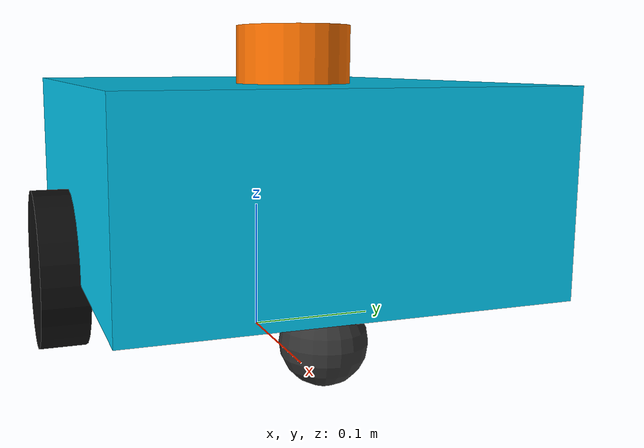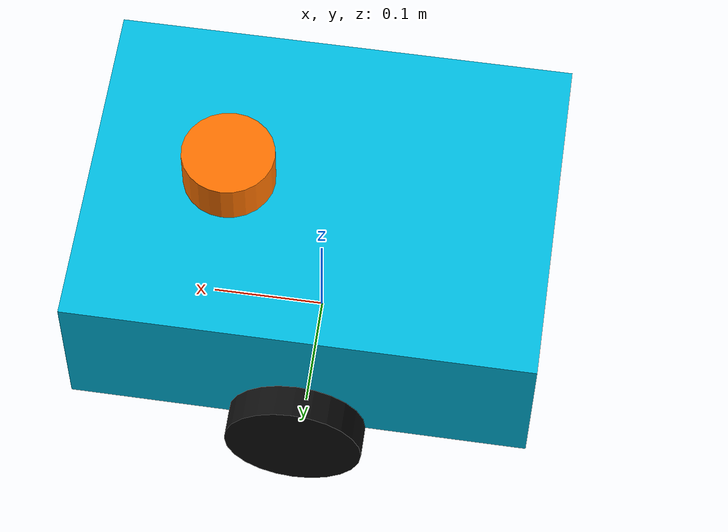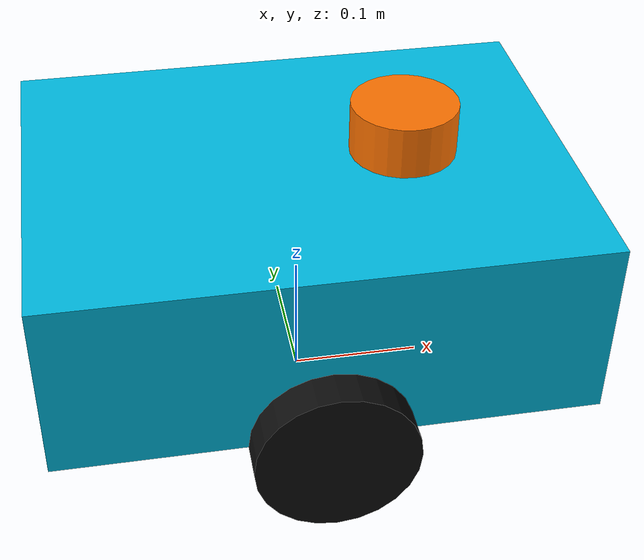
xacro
<?xml version="1.0"?>
<robot xmlns:xacro="http://www.ros.org/wiki/xacro" name="navpro_mini">

  <!-- INCLUDES -->
  <xacro:include filename="$(find navpro_description)/urdf/lidar.xacro" />
  <xacro:include filename="$(find navpro_description)/urdf/imu.xacro" />
  <xacro:include filename="$(find navpro_description)/urdf/gazebo_plugins.xacro" />

  <!-- CONSTANTS & PROPERTIES -->
  <xacro:property name="chassis_length" value="0.40" />
  <xacro:property name="chassis_width" value="0.30" />
  <xacro:property name="chassis_height" value="0.14" />
  <xacro:property name="chassis_mass" value="8.0" />

  <xacro:property name="wheel_radius" value="0.06" />
  <xacro:property name="wheel_width" value="0.035" />
  <xacro:property name="wheel_separation" value="0.32" />
  <xacro:property name="wheel_mass" value="0.8" />

  <xacro:property name="caster_radius" value="0.03" />
  <xacro:property name="caster_mass" value="0.3" />

  <!-- MATERIALS -->
  <material name="navpro_cyan">
    <color rgba="0.0 0.75 0.9 1.0" />
  </material>

  <material name="dark_gray">
    <color rgba="0.2 0.2 0.2 1.0" />
  </material>

  <material name="black">
    <color rgba="0.05 0.05 0.05 1.0" />
  </material>

  <material name="orange">
    <color rgba="1.0 0.45 0.0 1.0" />
  </material>

  <!-- INERTIAL MACROS -->
  <xacro:macro name="box_inertia" params="m w h d">
    <inertial>
      <origin xyz="0 0 0" rpy="0 0 0"/>
      <mass value="${m}"/>
      <inertia ixx="${(m/12) * (h*h + d*d)}" ixy="0.0" ixz="0.0"
               iyy="${(m/12) * (w*w + d*d)}" iyz="0.0"
               izz="${(m/12) * (w*w + h*h)}"/>
    </inertial>
  </xacro:macro>

  <xacro:macro name="cylinder_inertia" params="m r h">
    <inertial>
      <origin xyz="0 0 0" rpy="0 0 0" />
      <mass value="${m}"/>
      <inertia ixx="${(m/12) * (3*r*r + h*h)}" ixy="0" ixz="0"
               iyy="${(m/12) * (3*r*r + h*h)}" iyz="0"
               izz="${(m/2) * (r*r)}"/>
    </inertial>
  </xacro:macro>

  <xacro:macro name="sphere_inertia" params="m r">
    <inertial>
      <origin xyz="0 0 0" rpy="0 0 0" />
      <mass value="${m}"/>
      <inertia ixx="${(2/5) * m * (r*r)}" ixy="0.0" ixz="0.0"
               iyy="${(2/5) * m * (r*r)}" iyz="0.0"
               izz="${(2/5) * m * (r*r)}"/>
    </inertial>
  </xacro:macro>

  <!-- BASE FOOTPRINT (Ground projection) -->
  <link name="base_footprint" />

  <joint name="base_footprint_joint" type="fixed">
    <parent link="base_footprint" />
    <child link="base_link" />
    <origin xyz="0 0 ${wheel_radius}" rpy="0 0 0" />
  </joint>

  <!-- BASE LINK (Chassis body) -->
  <link name="base_link">
    <visual>
      <origin xyz="0 0 ${chassis_height/2}" rpy="0 0 0" />
      <geometry>
        <box size="${chassis_length} ${chassis_width} ${chassis_height}" />
      </geometry>
      <material name="navpro_cyan" />
    </visual>
    <collision>
      <origin xyz="0 0 ${chassis_height/2}" rpy="0 0 0" />
      <geometry>
        <box size="${chassis_length} ${chassis_width} ${chassis_height}" />
      </geometry>
    </collision>
    <xacro:box_inertia m="${chassis_mass}" w="${chassis_width}" h="${chassis_height}" d="${chassis_length}" />
  </link>

  <gazebo reference="base_link">
    <material>Gazebo/Turquoise</material>
  </gazebo>

  <!-- LEFT DRIVE WHEEL -->
  <link name="left_wheel_link">
    <visual>
      <origin xyz="0 0 0" rpy="1.570796 0 0" />
      <geometry>
        <cylinder radius="${wheel_radius}" length="${wheel_width}" />
      </geometry>
      <material name="black" />
    </visual>
    <collision>
      <origin xyz="0 0 0" rpy="1.570796 0 0" />
      <geometry>
        <cylinder radius="${wheel_radius}" length="${wheel_width}" />
      </geometry>
    </collision>
    <xacro:cylinder_inertia m="${wheel_mass}" r="${wheel_radius}" h="${wheel_width}" />
  </link>

  <joint name="left_wheel_joint" type="continuous">
    <parent link="base_link" />
    <child link="left_wheel_link" />
    <origin xyz="0 ${wheel_separation/2} 0" rpy="0 0 0" />
    <axis xyz="0 1 0" />
  </joint>

  <gazebo reference="left_wheel_link">
    <material>Gazebo/FlatBlack</material>
    <mu1>1.2</mu1>
    <mu2>1.2</mu2>
    <kp>1000000.0</kp>
    <kd>100.0</kd>
  </gazebo>

  <!-- RIGHT DRIVE WHEEL -->
  <link name="right_wheel_link">
    <visual>
      <origin xyz="0 0 0" rpy="1.570796 0 0" />
      <geometry>
        <cylinder radius="${wheel_radius}" length="${wheel_width}" />
      </geometry>
      <material name="black" />
    </visual>
    <collision>
      <origin xyz="0 0 0" rpy="1.570796 0 0" />
      <geometry>
        <cylinder radius="${wheel_radius}" length="${wheel_width}" />
      </geometry>
    </collision>
    <xacro:cylinder_inertia m="${wheel_mass}" r="${wheel_radius}" h="${wheel_width}" />
  </link>

  <joint name="right_wheel_joint" type="continuous">
    <parent link="base_link" />
    <child link="right_wheel_link" />
    <origin xyz="0 ${-wheel_separation/2} 0" rpy="0 0 0" />
    <axis xyz="0 1 0" />
  </joint>

  <gazebo reference="right_wheel_link">
    <material>Gazebo/FlatBlack</material>
    <mu1>1.2</mu1>
    <mu2>1.2</mu2>
    <kp>1000000.0</kp>
    <kd>100.0</kd>
  </gazebo>

  <!-- FRONT CASTER WHEEL (Frictionless ball) -->
  <link name="front_caster_link">
    <visual>
      <geometry>
        <sphere radius="${caster_radius}" />
      </geometry>
      <material name="dark_gray" />
    </visual>
    <collision>
      <geometry>
        <sphere radius="${caster_radius}" />
      </geometry>
    </collision>
    <xacro:sphere_inertia m="${caster_mass}" r="${caster_radius}" />
  </link>

  <joint name="front_caster_joint" type="fixed">
    <parent link="base_link" />
    <child link="front_caster_link" />
    <origin xyz="0.14 0 ${-wheel_radius + caster_radius}" rpy="0 0 0" />
  </joint>

  <gazebo reference="front_caster_link">
    <material>Gazebo/Grey</material>
    <mu1>0.001</mu1>
    <mu2>0.001</mu2>
  </gazebo>

  <!-- REAR CASTER WHEEL (Frictionless ball) -->
  <link name="rear_caster_link">
    <visual>
      <geometry>
        <sphere radius="${caster_radius}" />
      </geometry>
      <material name="dark_gray" />
    </visual>
    <collision>
      <geometry>
        <sphere radius="${caster_radius}" />
      </geometry>
    </collision>
    <xacro:sphere_inertia m="${caster_mass}" r="${caster_radius}" />
  </link>

  <joint name="rear_caster_joint" type="fixed">
    <parent link="base_link" />
    <child link="rear_caster_link" />
    <origin xyz="-0.14 0 ${-wheel_radius + caster_radius}" rpy="0 0 0" />
  </joint>

  <gazebo reference="rear_caster_link">
    <material>Gazebo/Grey</material>
    <mu1>0.001</mu1>
    <mu2>0.001</mu2>
  </gazebo>

</robot>

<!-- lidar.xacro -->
<robot xmlns:xacro="http://www.ros.org/wiki/xacro">

  <!-- 2D LIDAR SENSOR (RPLidar style) -->
  <link name="laser_frame">
    <visual>
      <origin xyz="0 0 0" rpy="0 0 0" />
      <geometry>
        <cylinder radius="0.04" length="0.04" />
      </geometry>
      <material name="orange" />
    </visual>
    <collision>
      <origin xyz="0 0 0" rpy="0 0 0" />
      <geometry>
        <cylinder radius="0.04" length="0.04" />
      </geometry>
    </collision>
    <xacro:cylinder_inertia m="0.15" r="0.04" h="0.04" />
  </link>

  <joint name="laser_joint" type="fixed">
    <parent link="base_link" />
    <child link="laser_frame" />
    <origin xyz="0.08 0 0.16" rpy="0 0 0" />
  </joint>

  <!-- Gazebo Lidar Sensor Plugin -->
  <gazebo reference="laser_frame">
    <material>Gazebo/Orange</material>
    <sensor name="laser_sensor" type="ray">
      <pose>0 0 0 0 0 0</pose>
      <visualize>false</visualize>
      <update_rate>10.0</update_rate>
      <ray>
        <scan>
          <horizontal>
            <samples>360</samples>
            <resolution>1</resolution>
            <min_angle>-3.14159265</min_angle>
            <max_angle>3.14159265</max_angle>
          </horizontal>
        </scan>
        <range>
          <min>0.15</min>
          <max>12.0</max>
          <resolution>0.01</resolution>
        </range>
        <noise>
          <type>gaussian</type>
          <mean>0.0</mean>
          <stddev>0.01</stddev>
        </noise>
      </ray>
      <plugin name="navpro_laser_controller" filename="libgazebo_ros_ray_sensor.so">
        <ros>
          <argument>~/out:=scan</argument>
        </ros>
        <output_type>sensor_msgs/LaserScan</output_type>
        <frame_name>laser_frame</frame_name>
      </plugin>
    </sensor>
  </gazebo>

</robot>

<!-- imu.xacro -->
<robot xmlns:xacro="http://www.ros.org/wiki/xacro">

  <!-- 9-DOF IMU SENSOR LINK                      -->
  <link name="imu_link">
    <visual>
      <origin xyz="0 0 0" rpy="0 0 0" />
      <geometry>
        <box size="0.03 0.03 0.015" />
      </geometry>
      <material name="orange" />
    </visual>
    <collision>
      <origin xyz="0 0 0" rpy="0 0 0" />
      <geometry>
        <box size="0.03 0.03 0.015" />
      </geometry>
    </collision>
    <xacro:box_inertia m="0.05" w="0.03" h="0.015" d="0.03" />
  </link>

  <joint name="imu_joint" type="fixed">
    <parent link="base_link" />
    <child link="imu_link" />
    <origin xyz="0.0 0.0 0.08" rpy="0 0 0" />
  </joint>

  <!-- Gazebo IMU Plugin -->
  <gazebo reference="imu_link">
    <material>Gazebo/Orange</material>
    <sensor name="imu_sensor" type="imu">
      <always_on>true</always_on>
      <update_rate>50.0</update_rate>
      <visualize>true</visualize>
      <topic>__default_topic__</topic>
      <plugin name="navpro_imu_plugin" filename="libgazebo_ros_imu_sensor.so">
        <ros>
          <namespace>/</namespace>
          <remapping>~/out:=imu/data</remapping>
        </ros>
        <initial_orientation_as_reference>false</initial_orientation_as_reference>
        <frame_name>imu_link</frame_name>
      </plugin>
    </sensor>
  </gazebo>

</robot>
